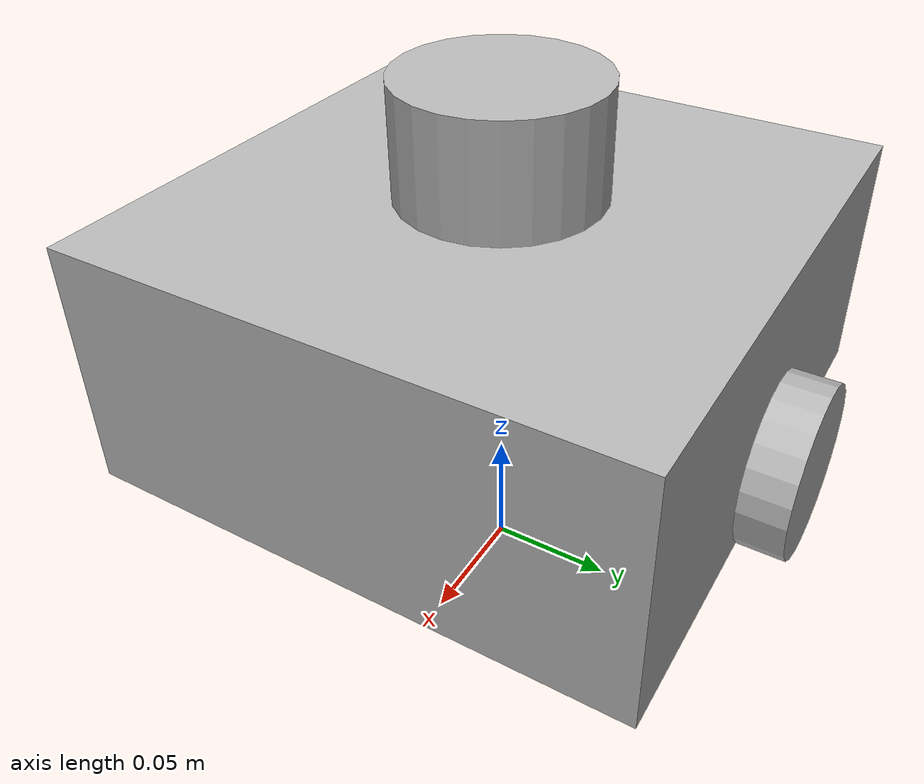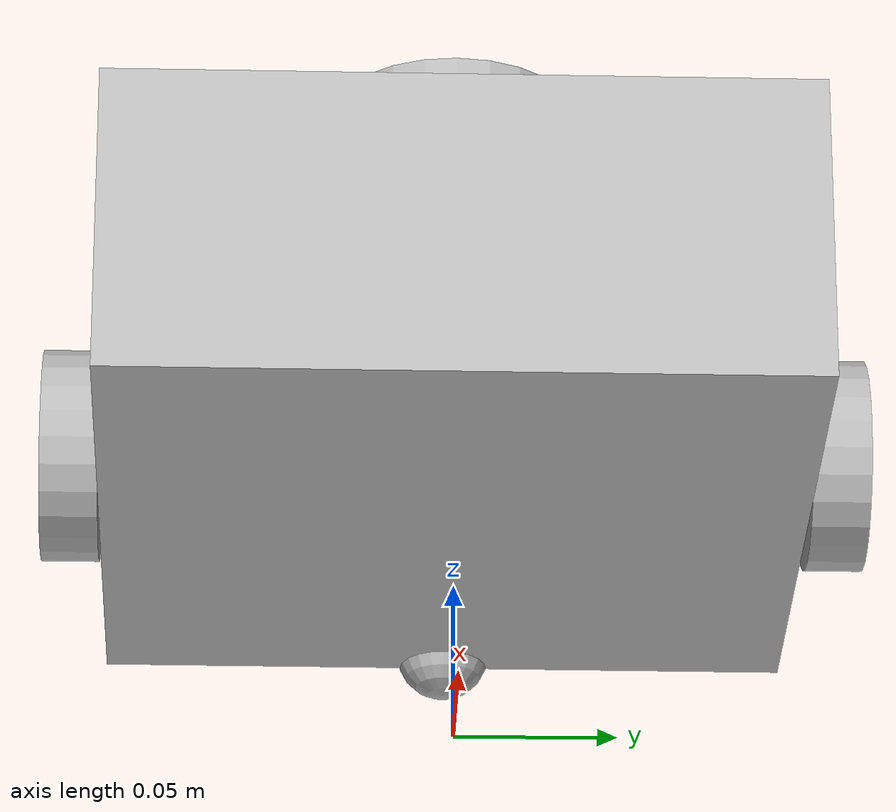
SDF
<?xml version="1.0" ?>
<sdf version="1.9">
  <model name="turtlebot3_waffle">

    <!-- Spawn slightly above ground -->
    <pose>0 0 0.06 0 0 0</pose>

    <!-- ================= BASE ================= -->
    <link name="base_link">
      <inertial>
        <mass>3.2</mass>
        <inertia>
          <ixx>0.045</ixx>
          <iyy>0.045</iyy>
          <izz>0.065</izz>
        </inertia>
      </inertial>

      <!-- BIG FLAT CONTACT PATCH -->
      <collision name="base_collision">
        <pose>0 0 0.06 0 0 0</pose>
        <geometry>
          <box>
            <size>0.22 0.22 0.10</size>
          </box>
        </geometry>
        <surface>
          <contact>
            <stiffness>8000</stiffness>
            <damping>300</damping>
          </contact>
          <friction>
            <ode>
              <mu>1.2</mu>
              <mu2>1.2</mu2>
            </ode>
          </friction>
        </surface>
      </collision>

      <visual name="base_visual">
      <pose>0 0 0.06 0 0 0</pose>
        <geometry>
          <box>
            <size>0.22 0.22 0.10</size>
          </box>
        </geometry>
      </visual>
      <sensor name="imu_sensor" type="imu">
        <always_on>true</always_on>
        <update_rate>100</update_rate>
        <topic>/imu</topic>
        <gz_frame_id>imu_link</gz_frame_id>
        <visualize>false</visualize>

        <imu>
          <angular_velocity>
            <x>
              <noise type="gaussian">
                <mean>0.0</mean>
                <stddev>0.0002</stddev>
                <bias_mean>0.00001</bias_mean>
                <bias_stddev>0.000001</bias_stddev>
              </noise>
            </x>
            <y>
              <noise type="gaussian">
                <mean>0.0</mean>
                <stddev>0.0002</stddev>
                <bias_mean>0.00001</bias_mean>
                <bias_stddev>0.000001</bias_stddev>
              </noise>
            </y>
            <z>
              <noise type="gaussian">
                <mean>0.0</mean>
                <stddev>0.0002</stddev>
                <bias_mean>0.00001</bias_mean>
                <bias_stddev>0.000001</bias_stddev>
              </noise>
            </z>
          </angular_velocity>
          <linear_acceleration>
            <x>
              <noise type="gaussian">
                <mean>0.0</mean>
                <stddev>0.017</stddev>
                <bias_mean>0.1</bias_mean>
                <bias_stddev>0.001</bias_stddev>
              </noise>
            </x>
            <y>
              <noise type="gaussian">
                <mean>0.0</mean>
                <stddev>0.017</stddev>
                <bias_mean>0.1</bias_mean>
                <bias_stddev>0.001</bias_stddev>
              </noise>
            </y>
            <z>
              <noise type="gaussian">
                <mean>0.0</mean>
                <stddev>0.017</stddev>
                <bias_mean>0.1</bias_mean>
                <bias_stddev>0.001</bias_stddev>
              </noise>
            </z>
          </linear_acceleration>
        </imu>
      </sensor>
    </link>

    <!-- ================= CAMERA ================= -->
    <link name="camera_link">
      <!-- Position camera slightly forward and above base -->
      <pose>0.073 -0.011 0.084 0 0 0</pose>

      <inertial>
        <mass>0.05</mass>
        <inertia>
          <ixx>0.0002</ixx>
          <iyy>0.0002</iyy>
          <izz>0.0002</izz>
        </inertia>
      </inertial>

      <visual name="camera_visual">
        <geometry>
          <box>
            <size>0.02 0.02 0.02</size>
          </box>
        </geometry>
      </visual>

      <collision name="camera_collision">
        <geometry>
          <box>
            <size>0.02 0.02 0.02</size>
          </box>
        </geometry>
      </collision>

      <!-- CAMERA SENSOR -->
      <sensor name="camera" type="camera">
        <always_on>true</always_on>
        <update_rate>5</update_rate>
        <topic>/camera/image_raw</topic>
        <gz_frame_id>camera_rgb_frame</gz_frame_id>
        <visualize>true</visualize>

        <camera>
          <horizontal_fov>1.047</horizontal_fov>
          <image>
            <width>640</width>
            <height>480</height>
            <format>R8G8B8</format>
          </image>
          <clip>
            <near>0.05</near>
            <far>10.0</far>
          </clip>
        </camera>
      </sensor>
    </link>

    <!-- ================= LIDAR ================= -->
    <link name="base_scan">
    <!-- Centered on robot, slightly above base -->
    <pose>0 0 0.13 0 0 0</pose>

    <inertial>
        <mass>0.05</mass>
        <inertia>
        <ixx>0.0002</ixx>
        <iyy>0.0002</iyy>
        <izz>0.0002</izz>
        </inertia>
    </inertial>

    <visual name="lidar_visual">
        <geometry>
        <cylinder>
            <radius>0.04</radius>
            <length>0.05</length>
        </cylinder>
        </geometry>
    </visual>

    <collision name="lidar_collision">
        <geometry>
        <cylinder>
            <radius>0.04</radius>
            <length>0.05</length>
        </cylinder>
        </geometry>
    </collision>

    <!-- LiDAR SENSOR -->
    <sensor name="lidar" type="gpu_lidar">
        <always_on>true</always_on>
        <update_rate>30</update_rate>
        <topic>/scan</topic>
        <gz_frame_id>base_scan</gz_frame_id>
        <visualize>true</visualize>

        <lidar>
        <scan>
            <horizontal>
            <samples>240</samples>
            <min_angle>-3.14159</min_angle>
            <max_angle>3.14159</max_angle>
            </horizontal>
        </scan>
        <range>
            <min>0.12</min>
            <max>3.5</max>
        </range>
        </lidar>
    </sensor>
    </link>

    <!-- ================= LEFT WHEEL ================= -->
    <link name="wheel_left_link">
      <pose>0  0.119 0.033 1.5708 0 0</pose>

      <inertial>
        <mass>0.18</mass>
        <inertia>
          <ixx>0.0006</ixx>
          <iyy>0.0006</iyy>
          <izz>0.0006</izz>
        </inertia>
      </inertial>

      <collision name="wheel_left_collision">
        <geometry>
          <cylinder>
            <radius>0.033</radius>
            <length>0.018</length>
          </cylinder>
        </geometry>
        <surface>
          <contact>
            <stiffness>6000</stiffness>
            <damping>250</damping>
          </contact>
          <friction>
            <ode>
              <mu>2.0</mu>
              <mu2>2.0</mu2>
            </ode>
          </friction>
        </surface>
      </collision>

      <visual name="wheel_left_visual">
        <geometry>
          <cylinder>
            <radius>0.033</radius>
            <length>0.018</length>
          </cylinder>
        </geometry>
      </visual>
    </link>

    <!-- ================= RIGHT WHEEL ================= -->
    <link name="wheel_right_link">
      <pose>0 -0.119 0.033 1.5708 0 0</pose>

      <inertial>
        <mass>0.18</mass>
        <inertia>
          <ixx>0.0006</ixx>
          <iyy>0.0006</iyy>
          <izz>0.0006</izz>
        </inertia>
      </inertial>

      <collision name="wheel_right_collision">
        <geometry>
          <cylinder>
            <radius>0.033</radius>
            <length>0.018</length>
          </cylinder>
        </geometry>
        <surface>
          <contact>
            <stiffness>6000</stiffness>
            <damping>250</damping>
          </contact>
          <friction>
            <ode>
              <mu>2.0</mu>
              <mu2>2.0</mu2>
            </ode>
          </friction>
        </surface>
      </collision>

      <visual name="wheel_right_visual">
        <geometry>
          <cylinder>
            <radius>0.033</radius>
            <length>0.018</length>
          </cylinder>
        </geometry>
      </visual>
    </link>

    <!-- ================= CASTER ================= -->
    <link name="caster_back_link">
      <pose>-0.11 0 0.015 0 0 0</pose>

      <inertial>
        <mass>0.08</mass>
        <inertia>
          <ixx>0.0002</ixx>
          <iyy>0.0002</iyy>
          <izz>0.0002</izz>
        </inertia>
      </inertial>

      <collision name="caster_collision">
        <geometry>
          <sphere>
            <radius>0.015</radius>
          </sphere>
        </geometry>
        <surface>
          <contact>
            <stiffness>5000</stiffness>
            <damping>400</damping>
          </contact>
          <friction>
            <ode>
              <mu>0.8</mu>
              <mu2>0.8</mu2>
            </ode>
          </friction>
        </surface>
      </collision>

      <visual name="caster_visual">
        <geometry>
          <sphere>
            <radius>0.015</radius>
          </sphere>
        </geometry>
      </visual>
    </link>

    <!-- ================= IMU LINK ================= -->
    <link name="imu_link">
      <!-- IMU centered on robot, inside the body -->
      <pose>0 0 0.068 0 0 0</pose>

      <inertial>
        <mass>0.001</mass>
        <inertia>
          <ixx>0.000001</ixx>
          <iyy>0.000001</iyy>
          <izz>0.000001</izz>
        </inertia>
      </inertial>

      <visual name="imu_visual">
        <geometry>
          <box>
            <size>0.01 0.01 0.01</size>
          </box>
        </geometry>
      </visual>
    </link>

    <!-- ================= JOINTS ================= -->

    <joint name="camera_joint" type="fixed">
      <parent>base_link</parent>
      <child>camera_link</child>
    </joint>

    <joint name="imu_joint" type="fixed">
      <parent>base_link</parent>
      <child>imu_link</child>
    </joint>

    <joint name="base_scan_joint" type="fixed">
        <parent>base_link</parent>
        <child>base_scan</child>
    </joint>

    <joint name="wheel_left_joint" type="revolute">
      <parent>base_link</parent>
      <child>wheel_left_link</child>
      <axis>
        <xyz>0 0 -1</xyz>
        <limit>
          <lower>-1e16</lower>
          <upper>1e16</upper>
        </limit>
        <dynamics>
          <damping>0.1</damping>
        </dynamics>
      </axis>
    </joint>

    <joint name="wheel_right_joint" type="revolute">
      <parent>base_link</parent>
      <child>wheel_right_link</child>
      <axis>
        <xyz>0 0 -1</xyz>
        <limit>
          <lower>-1e16</lower>
          <upper>1e16</upper>
        </limit>
        <dynamics>
          <damping>0.1</damping>
        </dynamics>
      </axis>
    </joint>

    <joint name="caster_joint" type="ball">
      <parent>base_link</parent>
      <child>caster_back_link</child>
    </joint>

    <link name="base_footprint"/>

    <joint name="base_footprint_joint" type="fixed">
      <parent>base_footprint</parent>
      <child>base_link</child>
    </joint>

    <!-- ================= DIFF DRIVE ================= -->
    <plugin filename="gz-sim-diff-drive-system"
            name="gz::sim::systems::DiffDrive">
      <left_joint>wheel_left_joint</left_joint>
      <right_joint>wheel_right_joint</right_joint>
      <wheel_separation>0.20</wheel_separation>
      <wheel_radius>0.033</wheel_radius>
      <odom_publish_frequency>50</odom_publish_frequency>
      <topic>/cmd_vel</topic>
      <odom_topic>/odom</odom_topic>
      <frame_id>odom</frame_id>
      <child_frame_id>base_footprint</child_frame_id>
    </plugin>

    <!-- Pose Publisher -->
    <plugin filename="gz-sim-pose-publisher-system" name="gz::sim::systems::PosePublisher">
      <publish_link_pose>true</publish_link_pose>
      <publish_sensor_pose>true</publish_sensor_pose>
      <publish_collision_pose>false</publish_collision_pose>
      <publish_visual_pose>false</publish_visual_pose>
      <publish_nested_model_pose>true</publish_nested_model_pose>
      <update_frequency>50</update_frequency>
    </plugin>

  </model>
</sdf>
